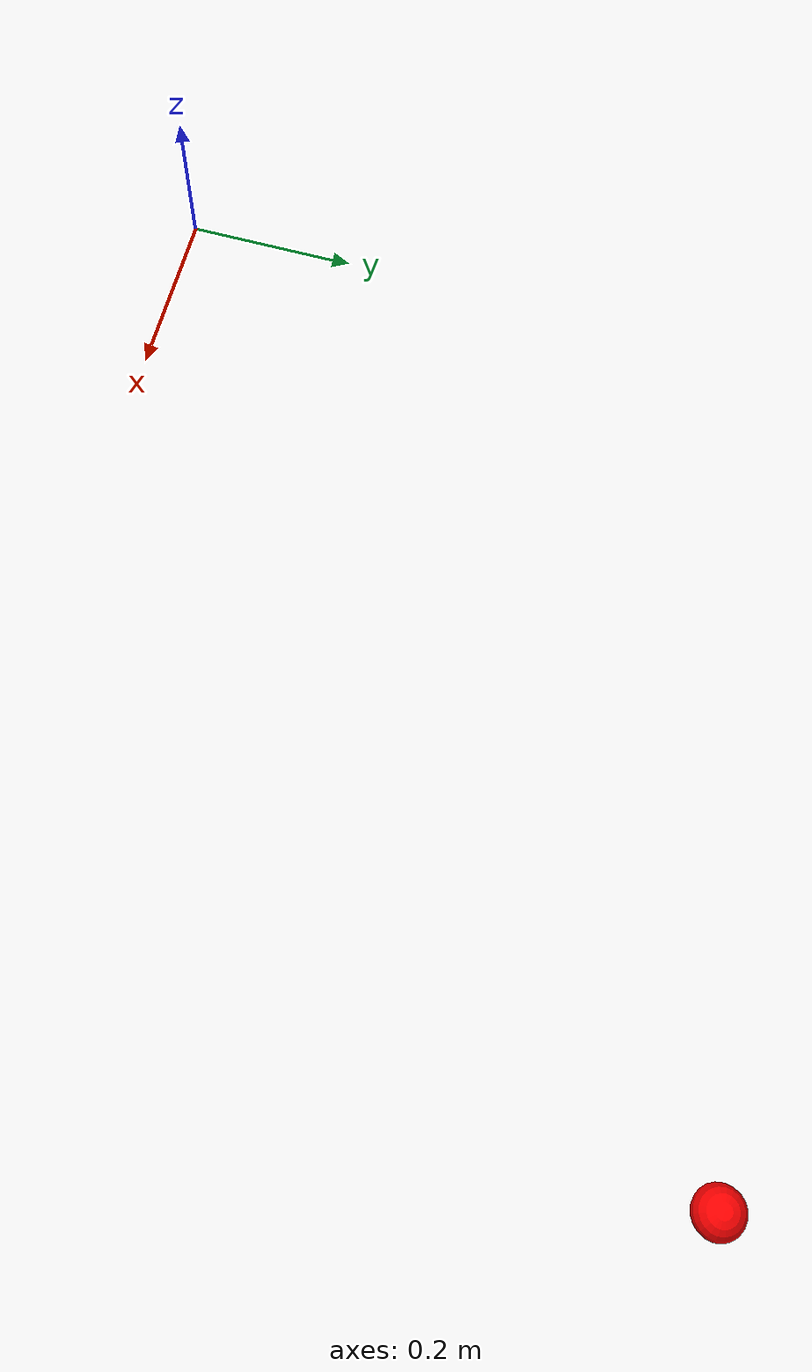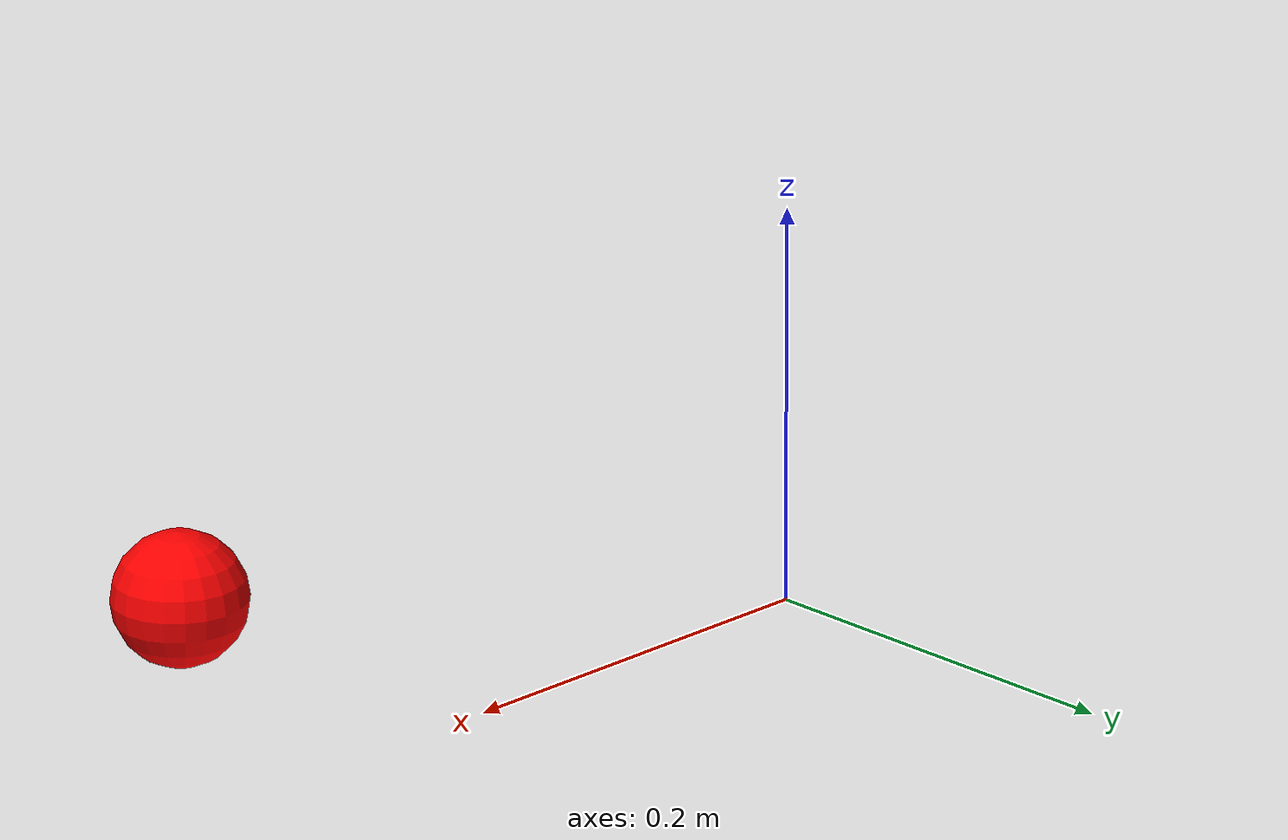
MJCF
<?xml version="1.0" encoding="utf-8"?>
<mujoco>
	<compiler angle="radian" coordinate="local" meshdir="../stls/fetch" texturedir="../textures"></compiler>
	<option timestep="0.002">
		<flag warmstart="enable"></flag>
	</option>

	<include file="shared.xml"></include>

	<worldbody>
		<geom name="floor0" pos="1 0.75 0" size="1.05 0.7 1" type="plane" condim="3" material="floor_mat"></geom>
		<body name="floor0" pos="1 0.75 0">
			<site name="target0" pos="0 0 0.5" size="0.02 0.02 0.02" rgba="1 0 0 1" type="sphere"></site>
		</body>

		<body name="table0" pos="1.32441906 0.75018422 0.2">
			<geom size="10.625 10.45 0.2" type="box" condim="3" name="table0" material="table_mat" mass="2000" friction="0.2 0.005 0.0001"></geom>
		</body>

		<body name="object0" pos="0.025 0.025 0.02">
			<joint name="object0:joint" type="free" damping="0.01"></joint>
			<geom size="0.025 0.02" type="cylinder" condim="3" name="object0" material="puck_mat" friction="0.2 0.005 0.0001" mass="2"></geom>
			<site name="object0" pos="0 0 0" size="0.02 0.02 0.02" rgba="1 0 0 1" type="sphere"></site>
		</body>

		<light directional="true" ambient="0.2 0.2 0.2" diffuse="0.8 0.8 0.8" specular="0.3 0.3 0.3" castshadow="false" pos="0 0 4" dir="0 0 -1" name="light0"></light>
	</worldbody>

	<actuator></actuator>
</mujoco>

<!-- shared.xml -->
<mujoco>
    <asset>
        <texture type="skybox" builtin="gradient" rgb1="0.44 0.85 0.56" rgb2="0.46 0.87 0.58" width="32" height="32"></texture>
        <texture name="texture_block" file="block.png" gridsize="3 4" gridlayout=".U..LFRB.D.."></texture>

        <material name="floor_mat" specular="0" shininess="0.5" reflectance="0" rgba="0.2 0.2 0.2 1"></material>
        <material name="table_mat" specular="0" shininess="0.5" reflectance="0" rgba="0.93 0.93 0.93 1"></material>
        <material name="block_mat" specular="0" shininess="0.5" reflectance="0" rgba="0.2 0.2 0.2 1"></material>
        <material name="puck_mat" specular="0" shininess="0.5" reflectance="0" rgba="0.2 0.2 0.2 1"></material>
    </asset>

</mujoco>
